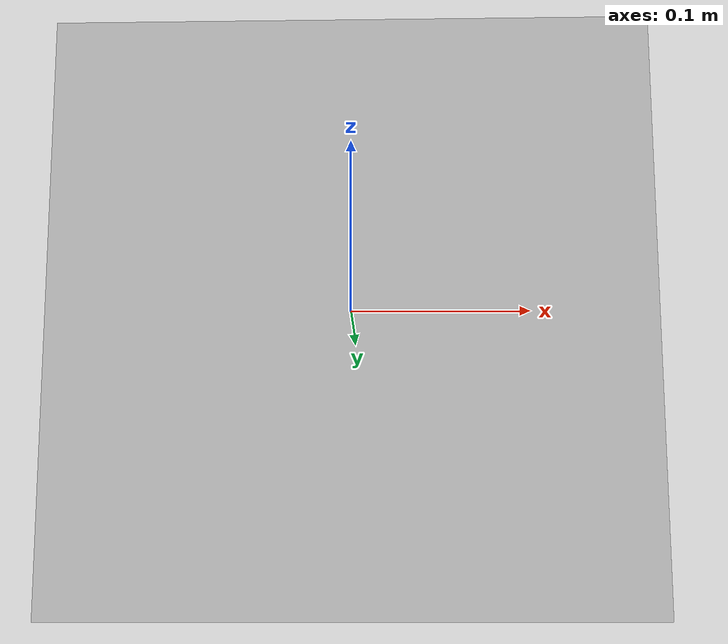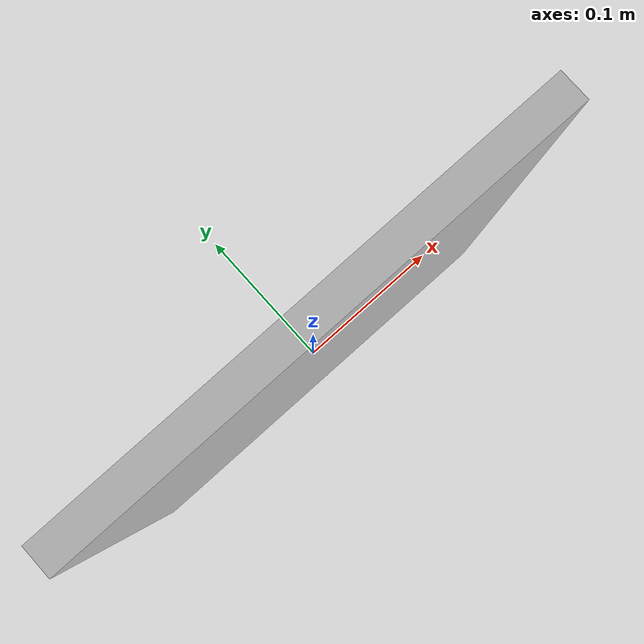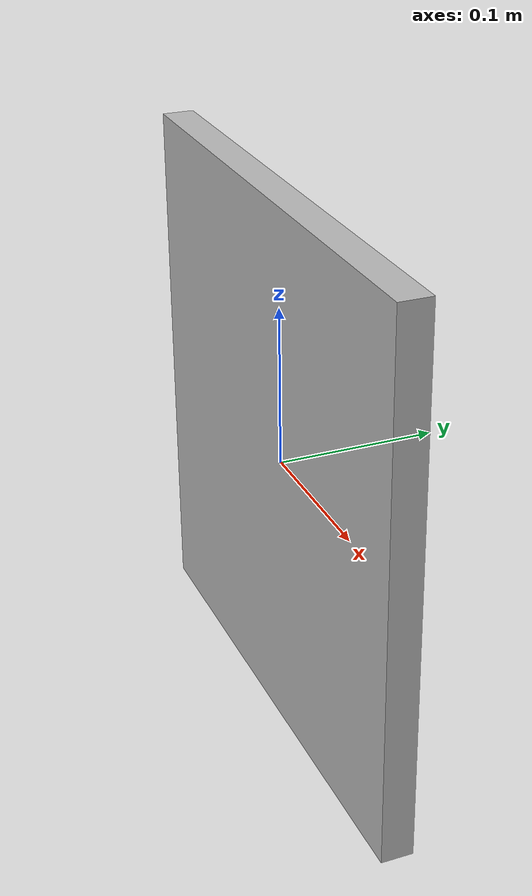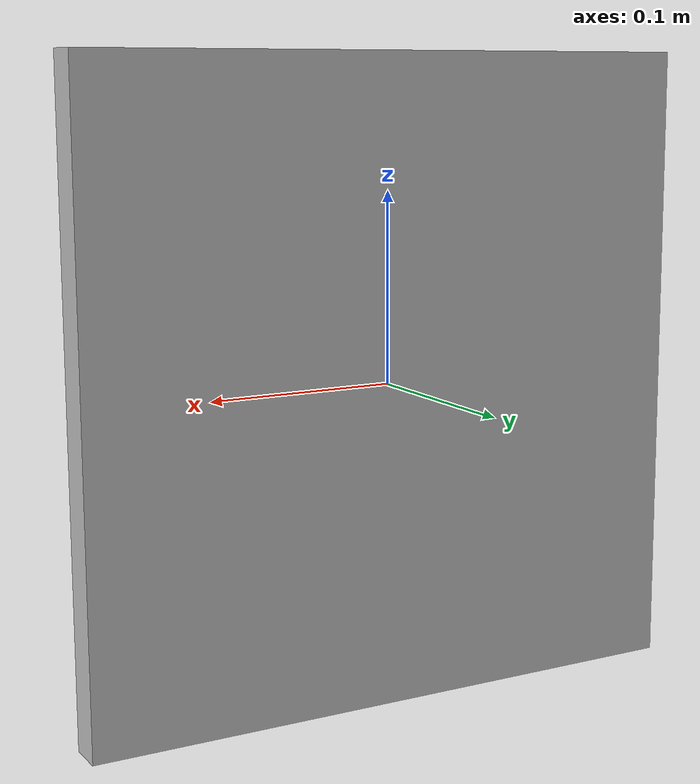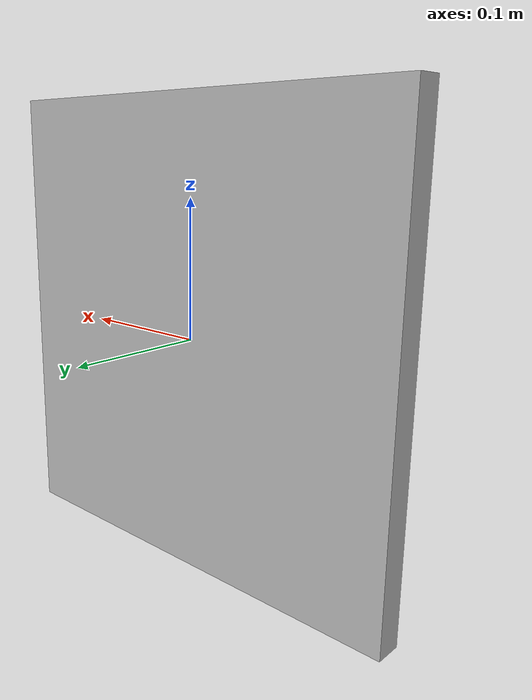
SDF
<?xml version='1.0'?>
<sdf version='1.6'>
  <model name='aruco_marker_22'>
    <static>true</static>
    <link name='marker_link'>
      <visual name='marker_visual'>
        <geometry>
          <box>
            <size>0.34 0.02 0.34</size>
          </box>
        </geometry>
        <material>
          <script>
            <uri>model://aruco_marker_22/materials/scripts</uri>
            <uri>model://aruco_marker_22/materials/textures</uri>
            <name>Aruco/Marker22</name>
          </script>
        </material>
      </visual>
    </link>
  </model>
</sdf>
